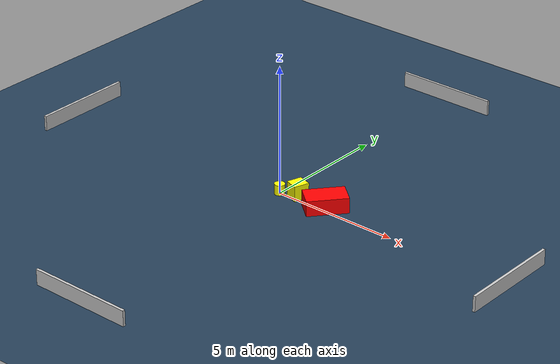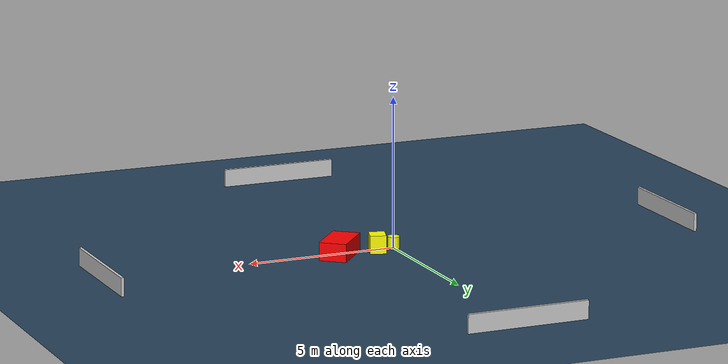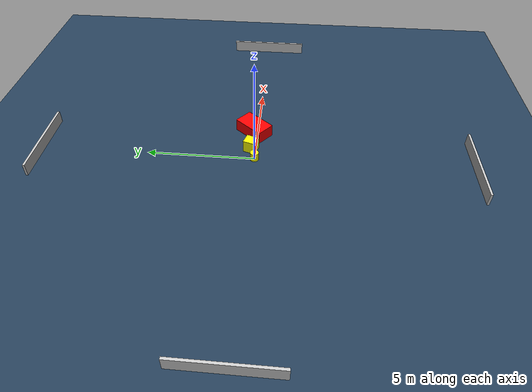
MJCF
<?xml version="1.0" ?>
<mujoco model="generated_environment">
  <option timestep="0.01" integrator="RK4" cone="elliptic"/>
  <default>
    <geom density="1"/>
  </default>
  <asset>
    <texture builtin="gradient" height="3072" name="skybox" rgb1="0.3 0.5 0.7" rgb2="0 0 0" type="skybox" width="512"/>
    <texture builtin="checker" height="300" name="groundplane" rgb1="0.2 0.3 0.4" rgb2="0.1 0.2 0.3" type="2d" width="300"/>
    <material name="groundplane" reflectance="0.2" texrepeat="5 5" texture="groundplane"/>
  </asset>
  <worldbody>
    <light dir="0 0 -1" directional="true" pos="0 0 1.5"/>
    <geom condim="3" friction="0.5 0.005 0.001" material="groundplane" name="floor" pos="0 0 0" size="0 0 0.05" type="plane"/>
    <body name="walls">
      <geom name="wall_1" condim="4" pos="-10.0 0.0 0.3" rgba="0.800000011920929 0.800000011920929 0.800000011920929 1.0" size="0.05 2.0 0.3" type="box"/>
      <geom name="wall_2" condim="4" pos="10.0 0.0 0.3" rgba="0.800000011920929 0.800000011920929 0.800000011920929 1.0" size="0.05 2.0 0.3" type="box"/>
      <geom name="wall_3" condim="4" pos="0.0 -10.0 0.3" rgba="0.800000011920929 0.800000011920929 0.800000011920929 1.0" size="2.0 0.05 0.3" type="box"/>
      <geom name="wall_4" condim="4" pos="0.0 10.0 0.3" rgba="0.800000011920929 0.800000011920929 0.800000011920929 1.0" size="2.0 0.05 0.3" type="box"/>
    </body>
    <body name="robot">
      <joint name="joint_x" type="slide" pos="0 0 0" axis="1 0 0"/>
      <joint name="joint_y" type="slide" pos="0 0 0" axis="0 1 0"/>
      <geom name="robot" type="cylinder" pos="0.0 0.0 0.2" size="0.2 0.2 0.0" mass="5.0" friction="1.0 0.005 0.0001" condim="4" rgba="1.0 1.0 0.0 1.0"/>
    </body>
    <body name="obstacle_1_movable">
      <geom name="obstacle_1_movable" condim="4" pos="0.6680525499662899 0.21484205951396862 0.3" euler="0 0 342.46621637977444" friction="0.0 0.005 0.001" rgba="1.0 1.0 0.0 1.0" size="0.2653550688400744 0.2962685572764765 0.3" type="box" mass="0.1"/>
      <joint type="free"/>
    </body>
    <body name="obstacle_2_static">
      <geom name="obstacle_2_static" condim="4" pos="1.9746161018865558 0.18122425680822726 0.3" euler="0 0 230.1091031289042" friction="0.0 0.005 0.001" rgba="1.0 0.0 0.0 1.0" size="0.7783086937217698 0.45347020060770243 0.3" type="box"/>
    </body>
  </worldbody>
  <actuator>
    <motor name="actuator_x" joint="joint_x" gear="1" ctrlrange="-1 1"/>
    <motor name="actuator_y" joint="joint_y" gear="1" ctrlrange="-1 1"/>
  </actuator>
</mujoco>
